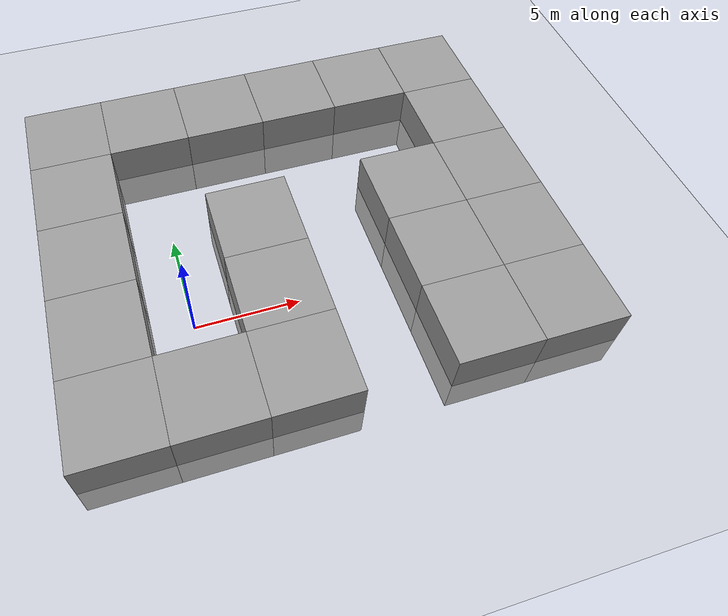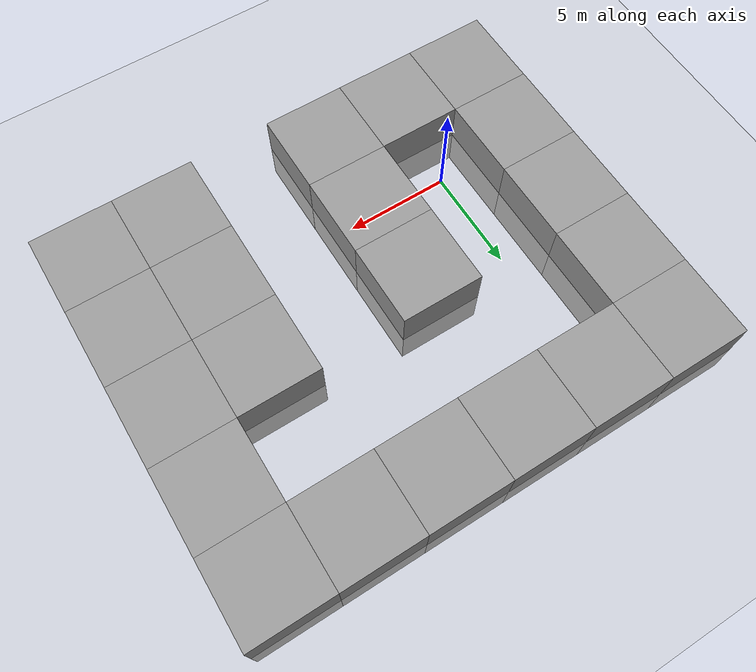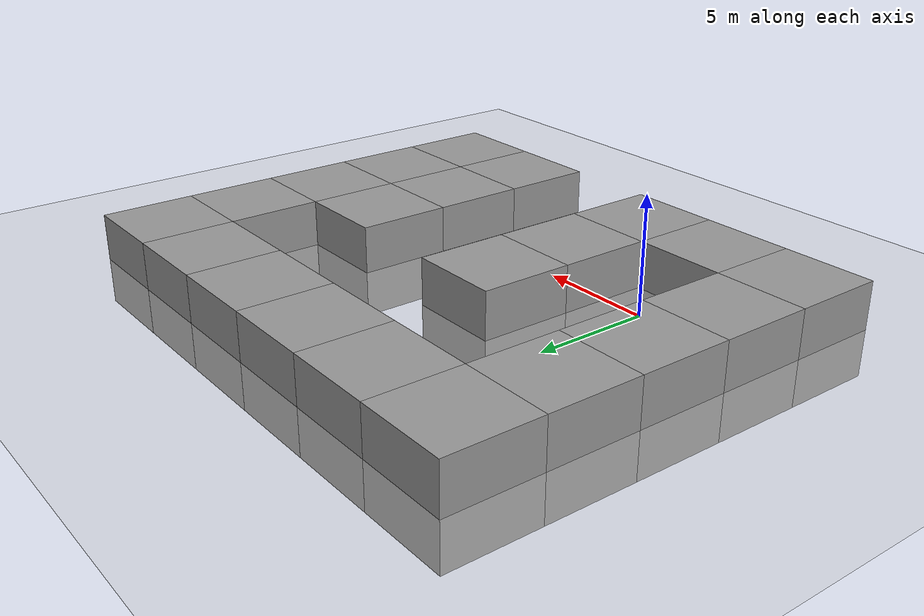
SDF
<?xml version="1.0" ?>
<sdf version="1.6">
  <world name="demo_world">
    <include>
      <uri>model://ground_plane</uri>
    </include>
    <include>
      <uri>model://sun</uri>
    </include>

    <!-- MAZE START -->
    <include>
    	<uri>model://unit_box</uri>
    	<pose>-4 -4 0 0 0 0</pose>
    </include>
    <include>
    	<uri>model://unit_box</uri>
    	<pose>0 -4 0 0 0 0</pose>
    </include>
    <include>
    	<uri>model://unit_box</uri>
    	<pose>4 -4 0 0 0 0</pose>
    </include>
    <include>
    	<uri>model://unit_box</uri>
    	<pose>12 -4 0 0 0 0</pose>
    </include>
    <include>
    	<uri>model://unit_box</uri>
    	<pose>16 -4 0 0 0 0</pose>
    </include>
    <include>
    	<uri>model://unit_box</uri>
    	<pose>-4 0 0 0 0 0</pose>
    </include>
    <include>
    	<uri>model://unit_box</uri>
    	<pose>4 0 0 0 0 0</pose>
    </include>
    <include>
    	<uri>model://unit_box</uri>
    	<pose>12 0 0 0 0 0</pose>
    </include>
    <include>
    	<uri>model://unit_box</uri>
    	<pose>16 0 0 0 0 0</pose>
    </include>
    <include>
    	<uri>model://unit_box</uri>
    	<pose>-4 4 0 0 0 0</pose>
    </include>
    <include>
    	<uri>model://unit_box</uri>
    	<pose>4 4 0 0 0 0</pose>
    </include>
    <include>
    	<uri>model://unit_box</uri>
    	<pose>12 4 0 0 0 0</pose>
    </include>
    <include>
    	<uri>model://unit_box</uri>
    	<pose>16 4 0 0 0 0</pose>
    </include>
    <include>
    	<uri>model://unit_box</uri>
    	<pose>-4 8 0 0 0 0</pose>
    </include>
    <include>
    	<uri>model://unit_box</uri>
    	<pose>16 8 0 0 0 0</pose>
    </include>
    <include>
    	<uri>model://unit_box</uri>
    	<pose>-4 12 0 0 0 0</pose>
    </include>
    <include>
    	<uri>model://unit_box</uri>
    	<pose>0 12 0 0 0 0</pose>
    </include>
    <include>
    	<uri>model://unit_box</uri>
    	<pose>4 12 0 0 0 0</pose>
    </include>
    <include>
    	<uri>model://unit_box</uri>
    	<pose>8 12 0 0 0 0</pose>
    </include>
    <include>
    	<uri>model://unit_box</uri>
    	<pose>12 12 0 0 0 0</pose>
    </include>
    <include>
    	<uri>model://unit_box</uri>
    	<pose>16 12 0 0 0 0</pose>
    </include>
    <!-- MAZE END -->
  </world>
</sdf>

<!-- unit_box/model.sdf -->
<sdf version='1.6'>
  <model name='unit_box'>
    <pose frame=''>0 0 0 0 -0 0</pose>
    <link name='link'>
      <inertial>
        <mass>1</mass>
        <inertia>
          <ixx>0.166667</ixx>
          <ixy>0</ixy>
          <ixz>0</ixz>
          <iyy>0.166667</iyy>
          <iyz>0</iyz>
          <izz>0.166667</izz>
        </inertia>
      </inertial>
      <collision name='collision'>
        <geometry>
          <box>
            <size>4 4 4</size>
          </box>
        </geometry>
        <max_contacts>10</max_contacts>
        <surface>
          <contact>
            <ode/>
          </contact>
          <bounce/>
          <friction>
            <torsional>
              <ode/>
            </torsional>
            <ode/>
          </friction>
        </surface>
      </collision>
      <visual name='visual'>
        <geometry>
          <box>
            <size>4 4 4</size>
          </box>
        </geometry>
        <material>
          <script>
            <name>Gazebo/Grey</name>
            <uri>file://media/materials/scripts/gazebo.material</uri>
          </script>
        </material>
      </visual>
      <self_collide>0</self_collide>
      <kinematic>0</kinematic>
      <gravity>1</gravity>
    </link>
  </model>
</sdf>
